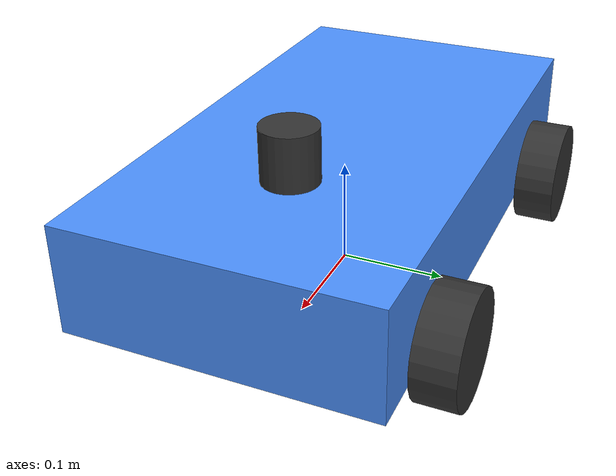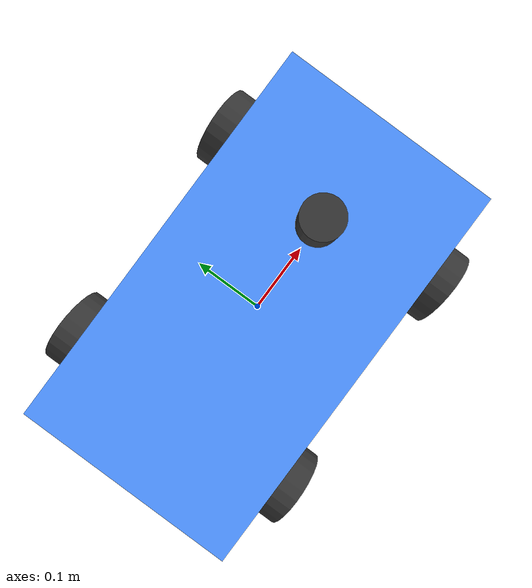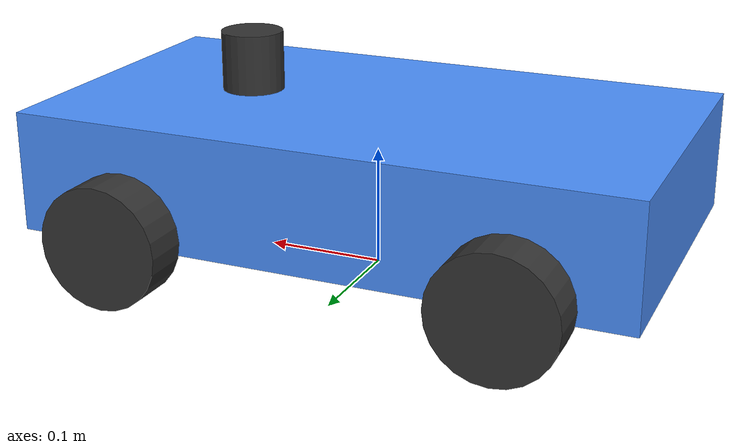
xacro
<?xml version="1.0"?>

<!-- A simple model of the racecar for rviz -->

<robot xmlns:xacro="http://www.ros.org/wiki/xacro" name="racecar">

  <xacro:property name="wheelbase" value="0.32" />
  <xacro:property name="width" value="0.28" />
  <xacro:property name="length" value="0.51" />
  <xacro:property name="height" value="0.1" />
  <xacro:property name="ground_offset" value="0.04" />
  <xacro:property name="wheel_radius" value="0.0508" />
  <xacro:property name="wheel_length" value="0.0381" />
  <xacro:property name="laser_distance_from_base_link" value="0.275" />
  <xacro:property name="laser_height" value="0.05" />
  <xacro:property name="laser_radius" value="0.026" />
  <xacro:property name="car_name" value="ego_racecar" />

  <material name="black">
    <color rgba="0.2 0.2 0.2 1."/>
  </material>

  <material name="blue">
    <color rgba="0.3 0.57 1. 1."/>
  </material>

  <link name="${car_name}/base_link">
    <visual>
      <origin xyz="0 0 ${ground_offset+height/2}"/>
      <geometry>
        <box size="${length} ${width} ${height}"/>
      </geometry>
      <material name="blue"/>
    </visual>
  </link>

  <joint name="base_to_laser_model" type="fixed">
    <parent link="${car_name}/base_link"/>
    <child link="${car_name}/laser_model"/>
    <origin xyz="${laser_distance_from_base_link-wheelbase/2} 0 ${ground_offset+height+(laser_height/2)}"/>
  </joint>

  <link name="${car_name}/laser_model">
    <visual>
      <geometry>
        <cylinder radius="${laser_radius}" length="${laser_height}"/>
      </geometry>
      <material name="black"/>
    </visual>
  </link>

  <joint name="$base_to_back_left_wheel" type="fixed">
    <parent link="${car_name}/base_link"/>
    <child link="${car_name}/back_left_wheel"/>
    <origin xyz="${-wheelbase/2} ${(wheel_length+width)/2} ${wheel_radius}"/>
  </joint>

  <link name="${car_name}/back_left_wheel">
    <visual>
      <geometry>
        <cylinder radius="${wheel_radius}" length="${wheel_length}"/>
      </geometry>
      <material name="black"/>
      <origin rpy="${pi/2} 0 0"/>
    </visual>
  </link>

  <joint name="base_to_back_right_wheel" type="fixed">
    <parent link="${car_name}/base_link"/>
    <child link="${car_name}/back_right_wheel"/>
    <origin xyz="${-wheelbase/2} ${-(wheel_length+width)/2} ${wheel_radius}"/>
  </joint>

  <link name="${car_name}/back_right_wheel">
    <visual>
      <geometry>
        <cylinder radius="${wheel_radius}" length="${wheel_length}"/>
      </geometry>
      <material name="black"/>
      <origin rpy="${pi/2} 0 0"/>
    </visual>
  </link>

  <joint name="base_to_front_left_hinge" type="fixed">
    <parent link="${car_name}/base_link"/>
    <child link="${car_name}/front_left_hinge"/>
    <origin xyz="${wheelbase/2} ${(wheel_length+width)/2} ${wheel_radius}"/>
  </joint>

  <link name="${car_name}/front_left_hinge"/>

  <joint name="front_left_hinge_to_wheel" type="continuous">
    <parent link="${car_name}/front_left_hinge"/>
    <child link="${car_name}/front_left_wheel"/>
  </joint>

  <link name="${car_name}/front_left_wheel">
    <visual>
      <geometry>
        <cylinder radius="${wheel_radius}" length="${wheel_length}"/>
      </geometry>
      <material name="black"/>
      <origin rpy="${pi/2} 0 0"/>
    </visual>
  </link>

  <joint name="base_to_front_right_hinge" type="fixed">
    <parent link="${car_name}/base_link"/>
    <child link="${car_name}/front_right_hinge"/>
    <origin xyz="${wheelbase/2} ${-(wheel_length+width)/2} ${wheel_radius}"/>
  </joint>

  <link name="${car_name}/front_right_hinge"/>

  <joint name="front_right_hinge_to_wheel" type="continuous">
    <parent link="${car_name}/front_right_hinge"/>
    <child link="${car_name}/front_right_wheel"/>
  </joint>

  <link name="${car_name}/front_right_wheel">
    <visual>
      <geometry>
        <cylinder radius="${wheel_radius}" length="${wheel_length}"/>
      </geometry>
      <material name="black"/>
      <origin rpy="${pi/2} 0 0"/>
    </visual>
  </link>

</robot>
